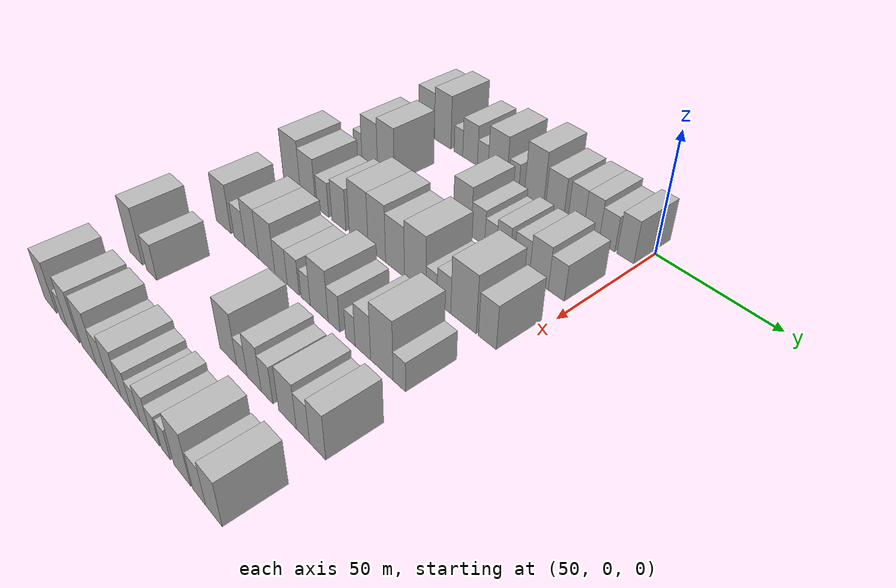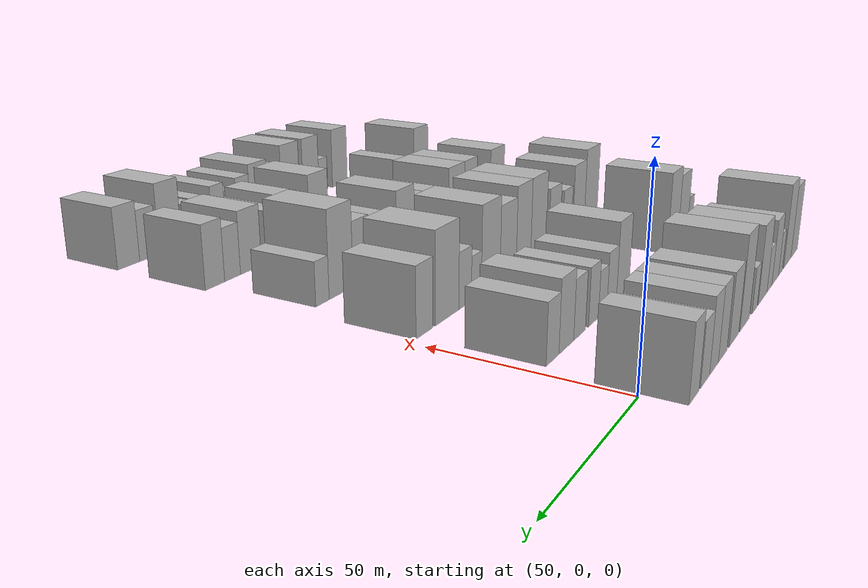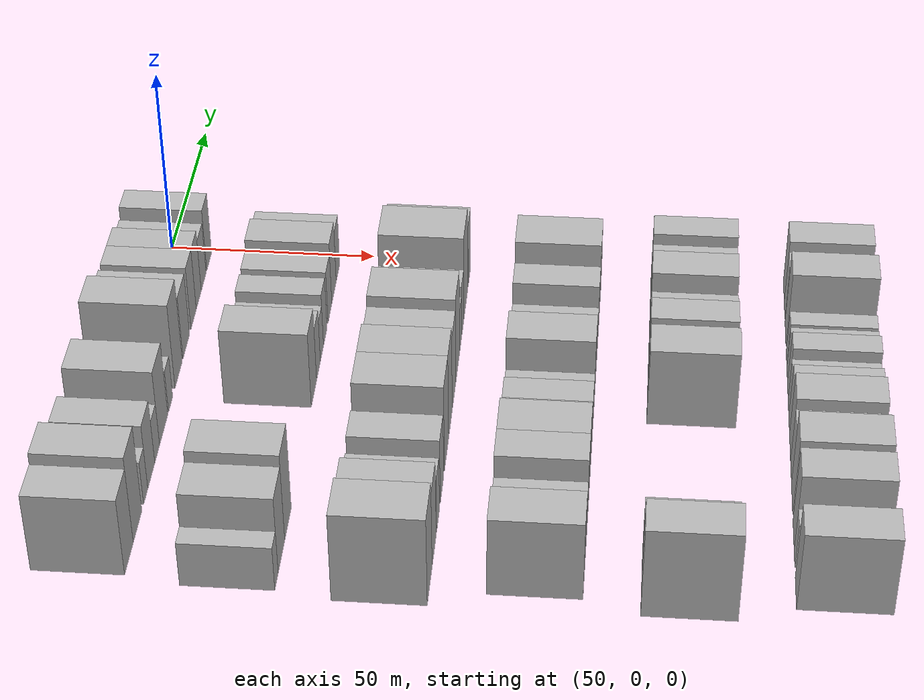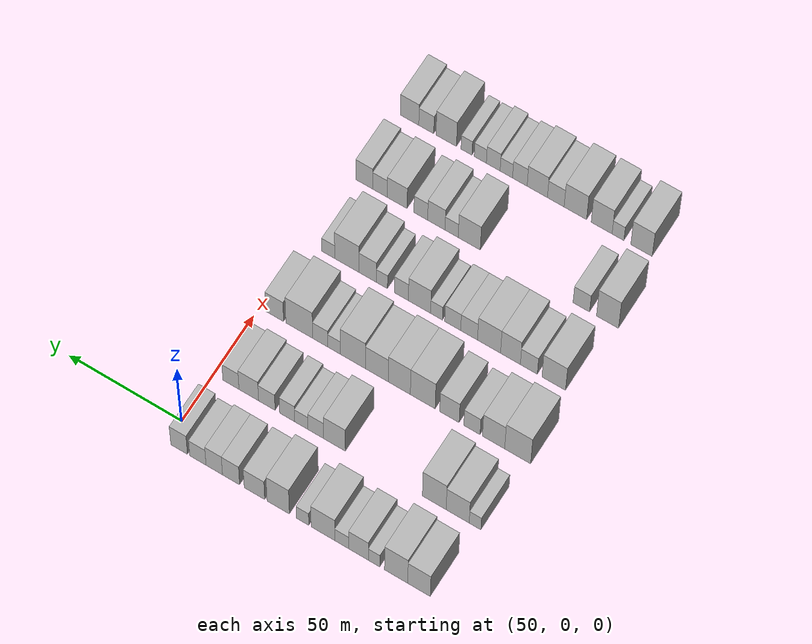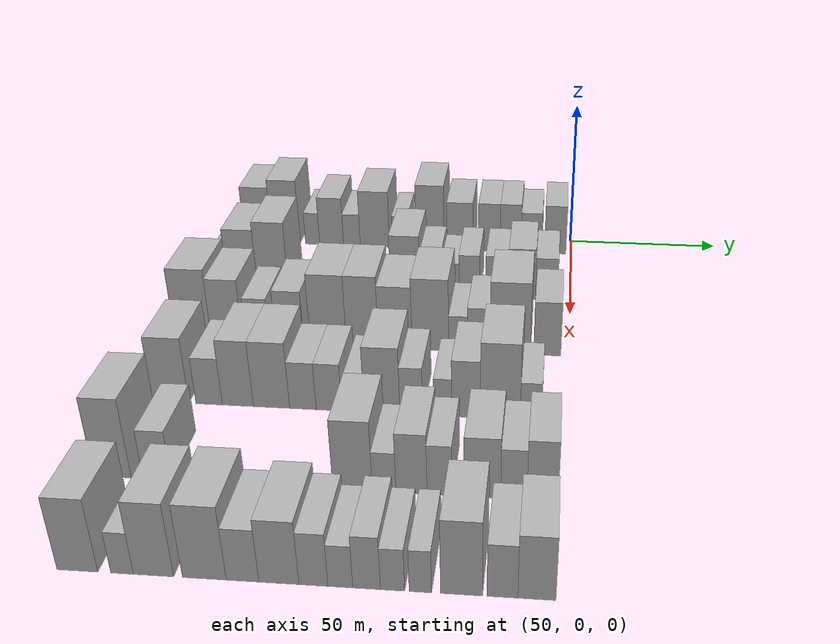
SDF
<sdf version="1.6">
 <world name="default">
  <model name="building_47">
   <static>1</static>
   <pose>50.0000 -109.7282 0 0.000000 0.000000 0.000000</pose>
   <link name="link">
    <pose>0 0 10.50 0 0 0</pose>
    <collision name="collision"><geometry><box><size>20.0000 9.7334 21.0000</size></box></geometry></collision>
    <visual name="visual">
     <cast_shadows>0</cast_shadows>
     <geometry><box><size>20.0000 9.7334 21.0000</size></box></geometry>
     <material>
      <script>
       <uri>model://HANNAS_wall/materials/scripts</uri>
       <uri>model://HANNAS_wall/materials/textures</uri>
       <name>vrc/HANNAS_wall</name>
      </script>
     </material>
    </visual>
   </link>
  </model>
  <model name="building_48">
   <static>1</static>
   <pose>50.0000 -99.8659 0 0.000000 0.000000 0.000000</pose>
   <link name="link">
    <pose>0 0 12.00 0 0 0</pose>
    <collision name="collision"><geometry><box><size>20.0000 9.9911 24.0000</size></box></geometry></collision>
    <visual name="visual">
     <cast_shadows>0</cast_shadows>
     <geometry><box><size>20.0000 9.9911 24.0000</size></box></geometry>
     <material>
      <script>
       <uri>model://HANNAS_wall/materials/scripts</uri>
       <uri>model://HANNAS_wall/materials/textures</uri>
       <name>vrc/HANNAS_wall</name>
      </script>
     </material>
    </visual>
   </link>
  </model>
  <model name="building_49">
   <static>1</static>
   <pose>50.0000 -90.3683 0 0.000000 0.000000 0.000000</pose>
   <link name="link">
    <pose>0 0 6.00 0 0 0</pose>
    <collision name="collision"><geometry><box><size>20.0000 5.0040 12.0000</size></box></geometry></collision>
    <visual name="visual">
     <cast_shadows>0</cast_shadows>
     <geometry><box><size>20.0000 5.0040 12.0000</size></box></geometry>
     <material>
      <script>
       <uri>model://HANNAS_wall/materials/scripts</uri>
       <uri>model://HANNAS_wall/materials/textures</uri>
       <name>vrc/HANNAS_wall</name>
      </script>
     </material>
    </visual>
   </link>
  </model>
  <model name="building_50">
   <static>1</static>
   <pose>50.0000 -83.6136 0 0.000000 0.000000 0.000000</pose>
   <link name="link">
    <pose>0 0 9.00 0 0 0</pose>
    <collision name="collision"><geometry><box><size>20.0000 8.5054 18.0000</size></box></geometry></collision>
    <visual name="visual">
     <cast_shadows>0</cast_shadows>
     <geometry><box><size>20.0000 8.5054 18.0000</size></box></geometry>
     <material>
      <script>
       <uri>model://HANNAS_wall/materials/scripts</uri>
       <uri>model://HANNAS_wall/materials/textures</uri>
       <name>vrc/HANNAS_wall</name>
      </script>
     </material>
    </visual>
   </link>
  </model>
  <model name="building_51">
   <static>1</static>
   <pose>50.0000 -76.3933 0 0.000000 0.000000 0.000000</pose>
   <link name="link">
    <pose>0 0 6.00 0 0 0</pose>
    <collision name="collision"><geometry><box><size>20.0000 5.9352 12.0000</size></box></geometry></collision>
    <visual name="visual">
     <cast_shadows>0</cast_shadows>
     <geometry><box><size>20.0000 5.9352 12.0000</size></box></geometry>
     <material>
      <script>
       <uri>model://HANNAS_wall/materials/scripts</uri>
       <uri>model://HANNAS_wall/materials/textures</uri>
       <name>vrc/HANNAS_wall</name>
      </script>
     </material>
    </visual>
   </link>
  </model>
  <model name="building_52">
   <static>1</static>
   <pose>50.0000 -68.2543 0 0.000000 0.000000 0.000000</pose>
   <link name="link">
    <pose>0 0 10.50 0 0 0</pose>
    <collision name="collision"><geometry><box><size>20.0000 10.3429 21.0000</size></box></geometry></collision>
    <visual name="visual">
     <cast_shadows>0</cast_shadows>
     <geometry><box><size>20.0000 10.3429 21.0000</size></box></geometry>
     <material>
      <script>
       <uri>model://HANNAS_wall/materials/scripts</uri>
       <uri>model://HANNAS_wall/materials/textures</uri>
       <name>vrc/HANNAS_wall</name>
      </script>
     </material>
    </visual>
   </link>
  </model>
  <model name="building_53">
   <static>1</static>
   <pose>50.0000 -59.3650 0 0.000000 0.000000 0.000000</pose>
   <link name="link">
    <pose>0 0 6.00 0 0 0</pose>
    <collision name="collision"><geometry><box><size>20.0000 5.4358 12.0000</size></box></geometry></collision>
    <visual name="visual">
     <cast_shadows>0</cast_shadows>
     <geometry><box><size>20.0000 5.4358 12.0000</size></box></geometry>
     <material>
      <script>
       <uri>model://HANNAS_wall/materials/scripts</uri>
       <uri>model://HANNAS_wall/materials/textures</uri>
       <name>vrc/HANNAS_wall</name>
      </script>
     </material>
    </visual>
   </link>
  </model>
  <model name="building_54">
   <static>1</static>
   <pose>50.0000 -48.7629 0 0.000000 0.000000 0.000000</pose>
   <link name="link">
    <pose>0 0 12.00 0 0 0</pose>
    <collision name="collision"><geometry><box><size>20.0000 9.7684 24.0000</size></box></geometry></collision>
    <visual name="visual">
     <cast_shadows>0</cast_shadows>
     <geometry><box><size>20.0000 9.7684 24.0000</size></box></geometry>
     <material>
      <script>
       <uri>model://HANNAS_wall/materials/scripts</uri>
       <uri>model://HANNAS_wall/materials/textures</uri>
       <name>vrc/HANNAS_wall</name>
      </script>
     </material>
    </visual>
   </link>
  </model>
  <model name="building_55">
   <static>1</static>
   <pose>50.0000 -38.3831 0 0.000000 0.000000 0.000000</pose>
   <link name="link">
    <pose>0 0 9.00 0 0 0</pose>
    <collision name="collision"><geometry><box><size>20.0000 8.9911 18.0000</size></box></geometry></collision>
    <visual name="visual">
     <cast_shadows>0</cast_shadows>
     <geometry><box><size>20.0000 8.9911 18.0000</size></box></geometry>
     <material>
      <script>
       <uri>model://HANNAS_wall/materials/scripts</uri>
       <uri>model://HANNAS_wall/materials/textures</uri>
       <name>vrc/HANNAS_wall</name>
      </script>
     </material>
    </visual>
   </link>
  </model>
  <model name="building_56">
   <static>1</static>
   <pose>50.0000 -28.1295 0 0.000000 0.000000 0.000000</pose>
   <link name="link">
    <pose>0 0 9.00 0 0 0</pose>
    <collision name="collision"><geometry><box><size>20.0000 7.5162 18.0000</size></box></geometry></collision>
    <visual name="visual">
     <cast_shadows>0</cast_shadows>
     <geometry><box><size>20.0000 7.5162 18.0000</size></box></geometry>
     <material>
      <script>
       <uri>model://HANNAS_wall/materials/scripts</uri>
       <uri>model://HANNAS_wall/materials/textures</uri>
       <name>vrc/HANNAS_wall</name>
      </script>
     </material>
    </visual>
   </link>
  </model>
  <model name="building_57">
   <static>1</static>
   <pose>50.0000 -20.7527 0 0.000000 0.000000 0.000000</pose>
   <link name="link">
    <pose>0 0 9.00 0 0 0</pose>
    <collision name="collision"><geometry><box><size>20.0000 7.2374 18.0000</size></box></geometry></collision>
    <visual name="visual">
     <cast_shadows>0</cast_shadows>
     <geometry><box><size>20.0000 7.2374 18.0000</size></box></geometry>
     <material>
      <script>
       <uri>model://HANNAS_wall/materials/scripts</uri>
       <uri>model://HANNAS_wall/materials/textures</uri>
       <name>vrc/HANNAS_wall</name>
      </script>
     </material>
    </visual>
   </link>
  </model>
  <model name="building_58">
   <static>1</static>
   <pose>50.0000 -13.5621 0 0.000000 0.000000 0.000000</pose>
   <link name="link">
    <pose>0 0 7.50 0 0 0</pose>
    <collision name="collision"><geometry><box><size>20.0000 7.1438 15.0000</size></box></geometry></collision>
    <visual name="visual">
     <cast_shadows>0</cast_shadows>
     <geometry><box><size>20.0000 7.1438 15.0000</size></box></geometry>
     <material>
      <script>
       <uri>model://HANNAS_wall/materials/scripts</uri>
       <uri>model://HANNAS_wall/materials/textures</uri>
       <name>vrc/HANNAS_wall</name>
      </script>
     </material>
    </visual>
   </link>
  </model>
  <model name="building_59">
   <static>1</static>
   <pose>50.0000 -5.3172 0 0.000000 0.000000 0.000000</pose>
   <link name="link">
    <pose>0 0 9.00 0 0 0</pose>
    <collision name="collision"><geometry><box><size>20.0000 7.3459 18.0000</size></box></geometry></collision>
    <visual name="visual">
     <cast_shadows>0</cast_shadows>
     <geometry><box><size>20.0000 7.3459 18.0000</size></box></geometry>
     <material>
      <script>
       <uri>model://HANNAS_wall/materials/scripts</uri>
       <uri>model://HANNAS_wall/materials/textures</uri>
       <name>vrc/HANNAS_wall</name>
      </script>
     </material>
    </visual>
   </link>
  </model>
  <model name="building_167">
   <static>1</static>
   <pose>82.0000 -114.2259 0 0.000000 0.000000 0.000000</pose>
   <link name="link">
    <pose>0 0 6.00 0 0 0</pose>
    <collision name="collision"><geometry><box><size>20.0000 5.0733 12.0000</size></box></geometry></collision>
    <visual name="visual">
     <cast_shadows>0</cast_shadows>
     <geometry><box><size>20.0000 5.0733 12.0000</size></box></geometry>
     <material>
      <script>
       <uri>model://HANNAS_wall/materials/scripts</uri>
       <uri>model://HANNAS_wall/materials/textures</uri>
       <name>vrc/HANNAS_wall</name>
      </script>
     </material>
    </visual>
   </link>
  </model>
  <model name="building_168">
   <static>1</static>
   <pose>82.0000 -106.7015 0 0.000000 0.000000 0.000000</pose>
   <link name="link">
    <pose>0 0 10.50 0 0 0</pose>
    <collision name="collision"><geometry><box><size>20.0000 9.9755 21.0000</size></box></geometry></collision>
    <visual name="visual">
     <cast_shadows>0</cast_shadows>
     <geometry><box><size>20.0000 9.9755 21.0000</size></box></geometry>
     <material>
      <script>
       <uri>model://HANNAS_wall/materials/scripts</uri>
       <uri>model://HANNAS_wall/materials/textures</uri>
       <name>vrc/HANNAS_wall</name>
      </script>
     </material>
    </visual>
   </link>
  </model>
  <model name="building_169">
   <static>1</static>
   <pose>82.0000 -96.5786 0 0.000000 0.000000 0.000000</pose>
   <link name="link">
    <pose>0 0 12.00 0 0 0</pose>
    <collision name="collision"><geometry><box><size>20.0000 10.2704 24.0000</size></box></geometry></collision>
    <visual name="visual">
     <cast_shadows>0</cast_shadows>
     <geometry><box><size>20.0000 10.2704 24.0000</size></box></geometry>
     <material>
      <script>
       <uri>model://HANNAS_wall/materials/scripts</uri>
       <uri>model://HANNAS_wall/materials/textures</uri>
       <name>vrc/HANNAS_wall</name>
      </script>
     </material>
    </visual>
   </link>
  </model>
  <model name="building_170">
   <static>1</static>
   <pose>82.0000 -53.1805 0 0.000000 0.000000 0.000000</pose>
   <link name="link">
    <pose>0 0 10.50 0 0 0</pose>
    <collision name="collision"><geometry><box><size>20.0000 9.5086 21.0000</size></box></geometry></collision>
    <visual name="visual">
     <cast_shadows>0</cast_shadows>
     <geometry><box><size>20.0000 9.5086 21.0000</size></box></geometry>
     <material>
      <script>
       <uri>model://HANNAS_wall/materials/scripts</uri>
       <uri>model://HANNAS_wall/materials/textures</uri>
       <name>vrc/HANNAS_wall</name>
      </script>
     </material>
    </visual>
   </link>
  </model>
  <model name="building_171">
   <static>1</static>
   <pose>82.0000 -44.9798 0 0.000000 0.000000 0.000000</pose>
   <link name="link">
    <pose>0 0 7.50 0 0 0</pose>
    <collision name="collision"><geometry><box><size>20.0000 6.8928 15.0000</size></box></geometry></collision>
    <visual name="visual">
     <cast_shadows>0</cast_shadows>
     <geometry><box><size>20.0000 6.8928 15.0000</size></box></geometry>
     <material>
      <script>
       <uri>model://HANNAS_wall/materials/scripts</uri>
       <uri>model://HANNAS_wall/materials/textures</uri>
       <name>vrc/HANNAS_wall</name>
      </script>
     </material>
    </visual>
   </link>
  </model>
  <model name="building_172">
   <static>1</static>
   <pose>82.0000 -38.6403 0 0.000000 0.000000 0.000000</pose>
   <link name="link">
    <pose>0 0 6.00 0 0 0</pose>
    <collision name="collision"><geometry><box><size>20.0000 5.7862 12.0000</size></box></geometry></collision>
    <visual name="visual">
     <cast_shadows>0</cast_shadows>
     <geometry><box><size>20.0000 5.7862 12.0000</size></box></geometry>
     <material>
      <script>
       <uri>model://HANNAS_wall/materials/scripts</uri>
       <uri>model://HANNAS_wall/materials/textures</uri>
       <name>vrc/HANNAS_wall</name>
      </script>
     </material>
    </visual>
   </link>
  </model>
  <model name="building_173">
   <static>1</static>
   <pose>82.0000 -32.4413 0 0.000000 0.000000 0.000000</pose>
   <link name="link">
    <pose>0 0 7.50 0 0 0</pose>
    <collision name="collision"><geometry><box><size>20.0000 6.6118 15.0000</size></box></geometry></collision>
    <visual name="visual">
     <cast_shadows>0</cast_shadows>
     <geometry><box><size>20.0000 6.6118 15.0000</size></box></geometry>
     <material>
      <script>
       <uri>model://HANNAS_wall/materials/scripts</uri>
       <uri>model://HANNAS_wall/materials/textures</uri>
       <name>vrc/HANNAS_wall</name>
      </script>
     </material>
    </visual>
   </link>
  </model>
  <model name="building_174">
   <static>1</static>
   <pose>82.0000 -23.4906 0 0.000000 0.000000 0.000000</pose>
   <link name="link">
    <pose>0 0 7.50 0 0 0</pose>
    <collision name="collision"><geometry><box><size>20.0000 7.2895 15.0000</size></box></geometry></collision>
    <visual name="visual">
     <cast_shadows>0</cast_shadows>
     <geometry><box><size>20.0000 7.2895 15.0000</size></box></geometry>
     <material>
      <script>
       <uri>model://HANNAS_wall/materials/scripts</uri>
       <uri>model://HANNAS_wall/materials/textures</uri>
       <name>vrc/HANNAS_wall</name>
      </script>
     </material>
    </visual>
   </link>
  </model>
  <model name="building_175">
   <static>1</static>
   <pose>82.0000 -15.5117 0 0.000000 0.000000 0.000000</pose>
   <link name="link">
    <pose>0 0 9.00 0 0 0</pose>
    <collision name="collision"><geometry><box><size>20.0000 8.6683 18.0000</size></box></geometry></collision>
    <visual name="visual">
     <cast_shadows>0</cast_shadows>
     <geometry><box><size>20.0000 8.6683 18.0000</size></box></geometry>
     <material>
      <script>
       <uri>model://HANNAS_wall/materials/scripts</uri>
       <uri>model://HANNAS_wall/materials/textures</uri>
       <name>vrc/HANNAS_wall</name>
      </script>
     </material>
    </visual>
   </link>
  </model>
  <model name="building_176">
   <static>1</static>
   <pose>82.0000 -7.6201 0 0.000000 0.000000 0.000000</pose>
   <link name="link">
    <pose>0 0 7.50 0 0 0</pose>
    <collision name="collision"><geometry><box><size>20.0000 7.1150 15.0000</size></box></geometry></collision>
    <visual name="visual">
     <cast_shadows>0</cast_shadows>
     <geometry><box><size>20.0000 7.1150 15.0000</size></box></geometry>
     <material>
      <script>
       <uri>model://HANNAS_wall/materials/scripts</uri>
       <uri>model://HANNAS_wall/materials/textures</uri>
       <name>vrc/HANNAS_wall</name>
      </script>
     </material>
    </visual>
   </link>
  </model>
  <model name="building_282">
   <static>1</static>
   <pose>114.0000 -113.1666 0 0.000000 0.000000 0.000000</pose>
   <link name="link">
    <pose>0 0 12.00 0 0 0</pose>
    <collision name="collision"><geometry><box><size>20.0000 11.2739 24.0000</size></box></geometry></collision>
    <visual name="visual">
     <cast_shadows>0</cast_shadows>
     <geometry><box><size>20.0000 11.2739 24.0000</size></box></geometry>
     <material>
      <script>
       <uri>model://HANNAS_wall/materials/scripts</uri>
       <uri>model://HANNAS_wall/materials/textures</uri>
       <name>vrc/HANNAS_wall</name>
      </script>
     </material>
    </visual>
   </link>
  </model>
  <model name="building_283">
   <static>1</static>
   <pose>114.0000 -102.7014 0 0.000000 0.000000 0.000000</pose>
   <link name="link">
    <pose>0 0 10.50 0 0 0</pose>
    <collision name="collision"><geometry><box><size>20.0000 9.6564 21.0000</size></box></geometry></collision>
    <visual name="visual">
     <cast_shadows>0</cast_shadows>
     <geometry><box><size>20.0000 9.6564 21.0000</size></box></geometry>
     <material>
      <script>
       <uri>model://HANNAS_wall/materials/scripts</uri>
       <uri>model://HANNAS_wall/materials/textures</uri>
       <name>vrc/HANNAS_wall</name>
      </script>
     </material>
    </visual>
   </link>
  </model>
  <model name="building_284">
   <static>1</static>
   <pose>114.0000 -93.3233 0 0.000000 0.000000 0.000000</pose>
   <link name="link">
    <pose>0 0 7.50 0 0 0</pose>
    <collision name="collision"><geometry><box><size>20.0000 7.0997 15.0000</size></box></geometry></collision>
    <visual name="visual">
     <cast_shadows>0</cast_shadows>
     <geometry><box><size>20.0000 7.0997 15.0000</size></box></geometry>
     <material>
      <script>
       <uri>model://HANNAS_wall/materials/scripts</uri>
       <uri>model://HANNAS_wall/materials/textures</uri>
       <name>vrc/HANNAS_wall</name>
      </script>
     </material>
    </visual>
   </link>
  </model>
  <model name="building_285">
   <static>1</static>
   <pose>114.0000 -83.5263 0 0.000000 0.000000 0.000000</pose>
   <link name="link">
    <pose>0 0 9.00 0 0 0</pose>
    <collision name="collision"><geometry><box><size>20.0000 8.4943 18.0000</size></box></geometry></collision>
    <visual name="visual">
     <cast_shadows>0</cast_shadows>
     <geometry><box><size>20.0000 8.4943 18.0000</size></box></geometry>
     <material>
      <script>
       <uri>model://HANNAS_wall/materials/scripts</uri>
       <uri>model://HANNAS_wall/materials/textures</uri>
       <name>vrc/HANNAS_wall</name>
      </script>
     </material>
    </visual>
   </link>
  </model>
  <model name="building_286">
   <static>1</static>
   <pose>114.0000 -71.8578 0 0.000000 0.000000 0.000000</pose>
   <link name="link">
    <pose>0 0 12.00 0 0 0</pose>
    <collision name="collision"><geometry><box><size>20.0000 10.8425 24.0000</size></box></geometry></collision>
    <visual name="visual">
     <cast_shadows>0</cast_shadows>
     <geometry><box><size>20.0000 10.8425 24.0000</size></box></geometry>
     <material>
      <script>
       <uri>model://HANNAS_wall/materials/scripts</uri>
       <uri>model://HANNAS_wall/materials/textures</uri>
       <name>vrc/HANNAS_wall</name>
      </script>
     </material>
    </visual>
   </link>
  </model>
  <model name="building_287">
   <static>1</static>
   <pose>114.0000 -61.6049 0 0.000000 0.000000 0.000000</pose>
   <link name="link">
    <pose>0 0 12.00 0 0 0</pose>
    <collision name="collision"><geometry><box><size>20.0000 9.6635 24.0000</size></box></geometry></collision>
    <visual name="visual">
     <cast_shadows>0</cast_shadows>
     <geometry><box><size>20.0000 9.6635 24.0000</size></box></geometry>
     <material>
      <script>
       <uri>model://HANNAS_wall/materials/scripts</uri>
       <uri>model://HANNAS_wall/materials/textures</uri>
       <name>vrc/HANNAS_wall</name>
      </script>
     </material>
    </visual>
   </link>
  </model>
  <model name="building_288">
   <static>1</static>
   <pose>114.0000 -51.7278 0 0.000000 0.000000 0.000000</pose>
   <link name="link">
    <pose>0 0 10.50 0 0 0</pose>
    <collision name="collision"><geometry><box><size>20.0000 10.0906 21.0000</size></box></geometry></collision>
    <visual name="visual">
     <cast_shadows>0</cast_shadows>
     <geometry><box><size>20.0000 10.0906 21.0000</size></box></geometry>
     <material>
      <script>
       <uri>model://HANNAS_wall/materials/scripts</uri>
       <uri>model://HANNAS_wall/materials/textures</uri>
       <name>vrc/HANNAS_wall</name>
      </script>
     </material>
    </visual>
   </link>
  </model>
  <model name="building_289">
   <static>1</static>
   <pose>114.0000 -41.2081 0 0.000000 0.000000 0.000000</pose>
   <link name="link">
    <pose>0 0 12.00 0 0 0</pose>
    <collision name="collision"><geometry><box><size>20.0000 10.9488 24.0000</size></box></geometry></collision>
    <visual name="visual">
     <cast_shadows>0</cast_shadows>
     <geometry><box><size>20.0000 10.9488 24.0000</size></box></geometry>
     <material>
      <script>
       <uri>model://HANNAS_wall/materials/scripts</uri>
       <uri>model://HANNAS_wall/materials/textures</uri>
       <name>vrc/HANNAS_wall</name>
      </script>
     </material>
    </visual>
   </link>
  </model>
  <model name="building_290">
   <static>1</static>
   <pose>114.0000 -32.9665 0 0.000000 0.000000 0.000000</pose>
   <link name="link">
    <pose>0 0 6.00 0 0 0</pose>
    <collision name="collision"><geometry><box><size>20.0000 5.5345 12.0000</size></box></geometry></collision>
    <visual name="visual">
     <cast_shadows>0</cast_shadows>
     <geometry><box><size>20.0000 5.5345 12.0000</size></box></geometry>
     <material>
      <script>
       <uri>model://HANNAS_wall/materials/scripts</uri>
       <uri>model://HANNAS_wall/materials/textures</uri>
       <name>vrc/HANNAS_wall</name>
      </script>
     </material>
    </visual>
   </link>
  </model>
  <model name="building_291">
   <static>1</static>
   <pose>114.0000 -26.8598 0 0.000000 0.000000 0.000000</pose>
   <link name="link">
    <pose>0 0 7.50 0 0 0</pose>
    <collision name="collision"><geometry><box><size>20.0000 6.6787 15.0000</size></box></geometry></collision>
    <visual name="visual">
     <cast_shadows>0</cast_shadows>
     <geometry><box><size>20.0000 6.6787 15.0000</size></box></geometry>
     <material>
      <script>
       <uri>model://HANNAS_wall/materials/scripts</uri>
       <uri>model://HANNAS_wall/materials/textures</uri>
       <name>vrc/HANNAS_wall</name>
      </script>
     </material>
    </visual>
   </link>
  </model>
  <model name="building_292">
   <static>1</static>
   <pose>114.0000 -17.5716 0 0.000000 0.000000 0.000000</pose>
   <link name="link">
    <pose>0 0 12.00 0 0 0</pose>
    <collision name="collision"><geometry><box><size>20.0000 11.8977 24.0000</size></box></geometry></collision>
    <visual name="visual">
     <cast_shadows>0</cast_shadows>
     <geometry><box><size>20.0000 11.8977 24.0000</size></box></geometry>
     <material>
      <script>
       <uri>model://HANNAS_wall/materials/scripts</uri>
       <uri>model://HANNAS_wall/materials/textures</uri>
       <name>vrc/HANNAS_wall</name>
      </script>
     </material>
    </visual>
   </link>
  </model>
  <model name="building_293">
   <static>1</static>
   <pose>114.0000 -6.6537 0 0.000000 0.000000 0.000000</pose>
   <link name="link">
    <pose>0 0 9.00 0 0 0</pose>
    <collision name="collision"><geometry><box><size>20.0000 7.9381 18.0000</size></box></geometry></collision>
    <visual name="visual">
     <cast_shadows>0</cast_shadows>
     <geometry><box><size>20.0000 7.9381 18.0000</size></box></geometry>
     <material>
      <script>
       <uri>model://HANNAS_wall/materials/scripts</uri>
       <uri>model://HANNAS_wall/materials/textures</uri>
       <name>vrc/HANNAS_wall</name>
      </script>
     </material>
    </visual>
   </link>
  </model>
  <model name="building_403">
   <static>1</static>
   <pose>146.0000 -109.4731 0 0.000000 0.000000 0.000000</pose>
   <link name="link">
    <pose>0 0 10.50 0 0 0</pose>
    <collision name="collision"><geometry><box><size>20.0000 10.2498 21.0000</size></box></geometry></collision>
    <visual name="visual">
     <cast_shadows>0</cast_shadows>
     <geometry><box><size>20.0000 10.2498 21.0000</size></box></geometry>
     <material>
      <script>
       <uri>model://HANNAS_wall/materials/scripts</uri>
       <uri>model://HANNAS_wall/materials/textures</uri>
       <name>vrc/HANNAS_wall</name>
      </script>
     </material>
    </visual>
   </link>
  </model>
  <model name="building_404">
   <static>1</static>
   <pose>146.0000 -98.6468 0 0.000000 0.000000 0.000000</pose>
   <link name="link">
    <pose>0 0 7.50 0 0 0</pose>
    <collision name="collision"><geometry><box><size>20.0000 7.4027 15.0000</size></box></geometry></collision>
    <visual name="visual">
     <cast_shadows>0</cast_shadows>
     <geometry><box><size>20.0000 7.4027 15.0000</size></box></geometry>
     <material>
      <script>
       <uri>model://HANNAS_wall/materials/scripts</uri>
       <uri>model://HANNAS_wall/materials/textures</uri>
       <name>vrc/HANNAS_wall</name>
      </script>
     </material>
    </visual>
   </link>
  </model>
  <model name="building_405">
   <static>1</static>
   <pose>146.0000 -90.6107 0 0.000000 0.000000 0.000000</pose>
   <link name="link">
    <pose>0 0 10.50 0 0 0</pose>
    <collision name="collision"><geometry><box><size>20.0000 8.6695 21.0000</size></box></geometry></collision>
    <visual name="visual">
     <cast_shadows>0</cast_shadows>
     <geometry><box><size>20.0000 8.6695 21.0000</size></box></geometry>
     <material>
      <script>
       <uri>model://HANNAS_wall/materials/scripts</uri>
       <uri>model://HANNAS_wall/materials/textures</uri>
       <name>vrc/HANNAS_wall</name>
      </script>
     </material>
    </visual>
   </link>
  </model>
  <model name="building_406">
   <static>1</static>
   <pose>146.0000 -81.2273 0 0.000000 0.000000 0.000000</pose>
   <link name="link">
    <pose>0 0 10.50 0 0 0</pose>
    <collision name="collision"><geometry><box><size>20.0000 10.0974 21.0000</size></box></geometry></collision>
    <visual name="visual">
     <cast_shadows>0</cast_shadows>
     <geometry><box><size>20.0000 10.0974 21.0000</size></box></geometry>
     <material>
      <script>
       <uri>model://HANNAS_wall/materials/scripts</uri>
       <uri>model://HANNAS_wall/materials/textures</uri>
       <name>vrc/HANNAS_wall</name>
      </script>
     </material>
    </visual>
   </link>
  </model>
  <model name="building_407">
   <static>1</static>
   <pose>146.0000 -72.4935 0 0.000000 0.000000 0.000000</pose>
   <link name="link">
    <pose>0 0 7.50 0 0 0</pose>
    <collision name="collision"><geometry><box><size>20.0000 7.3701 15.0000</size></box></geometry></collision>
    <visual name="visual">
     <cast_shadows>0</cast_shadows>
     <geometry><box><size>20.0000 7.3701 15.0000</size></box></geometry>
     <material>
      <script>
       <uri>model://HANNAS_wall/materials/scripts</uri>
       <uri>model://HANNAS_wall/materials/textures</uri>
       <name>vrc/HANNAS_wall</name>
      </script>
     </material>
    </visual>
   </link>
  </model>
  <model name="building_408">
   <static>1</static>
   <pose>146.0000 -65.3092 0 0.000000 0.000000 0.000000</pose>
   <link name="link">
    <pose>0 0 7.50 0 0 0</pose>
    <collision name="collision"><geometry><box><size>20.0000 6.9985 15.0000</size></box></geometry></collision>
    <visual name="visual">
     <cast_shadows>0</cast_shadows>
     <geometry><box><size>20.0000 6.9985 15.0000</size></box></geometry>
     <material>
      <script>
       <uri>model://HANNAS_wall/materials/scripts</uri>
       <uri>model://HANNAS_wall/materials/textures</uri>
       <name>vrc/HANNAS_wall</name>
      </script>
     </material>
    </visual>
   </link>
  </model>
  <model name="building_409">
   <static>1</static>
   <pose>146.0000 -58.1981 0 0.000000 0.000000 0.000000</pose>
   <link name="link">
    <pose>0 0 6.00 0 0 0</pose>
    <collision name="collision"><geometry><box><size>20.0000 5.2238 12.0000</size></box></geometry></collision>
    <visual name="visual">
     <cast_shadows>0</cast_shadows>
     <geometry><box><size>20.0000 5.2238 12.0000</size></box></geometry>
     <material>
      <script>
       <uri>model://HANNAS_wall/materials/scripts</uri>
       <uri>model://HANNAS_wall/materials/textures</uri>
       <name>vrc/HANNAS_wall</name>
      </script>
     </material>
    </visual>
   </link>
  </model>
  <model name="building_410">
   <static>1</static>
   <pose>146.0000 -50.6871 0 0.000000 0.000000 0.000000</pose>
   <link name="link">
    <pose>0 0 10.50 0 0 0</pose>
    <collision name="collision"><geometry><box><size>20.0000 9.7982 21.0000</size></box></geometry></collision>
    <visual name="visual">
     <cast_shadows>0</cast_shadows>
     <geometry><box><size>20.0000 9.7982 21.0000</size></box></geometry>
     <material>
      <script>
       <uri>model://HANNAS_wall/materials/scripts</uri>
       <uri>model://HANNAS_wall/materials/textures</uri>
       <name>vrc/HANNAS_wall</name>
      </script>
     </material>
    </visual>
   </link>
  </model>
  <model name="building_411">
   <static>1</static>
   <pose>146.0000 -42.6820 0 0.000000 0.000000 0.000000</pose>
   <link name="link">
    <pose>0 0 7.50 0 0 0</pose>
    <collision name="collision"><geometry><box><size>20.0000 6.2121 15.0000</size></box></geometry></collision>
    <visual name="visual">
     <cast_shadows>0</cast_shadows>
     <geometry><box><size>20.0000 6.2121 15.0000</size></box></geometry>
     <material>
      <script>
       <uri>model://HANNAS_wall/materials/scripts</uri>
       <uri>model://HANNAS_wall/materials/textures</uri>
       <name>vrc/HANNAS_wall</name>
      </script>
     </material>
    </visual>
   </link>
  </model>
  <model name="building_412">
   <static>1</static>
   <pose>146.0000 -34.1272 0 0.000000 0.000000 0.000000</pose>
   <link name="link">
    <pose>0 0 6.00 0 0 0</pose>
    <collision name="collision"><geometry><box><size>20.0000 4.8975 12.0000</size></box></geometry></collision>
    <visual name="visual">
     <cast_shadows>0</cast_shadows>
     <geometry><box><size>20.0000 4.8975 12.0000</size></box></geometry>
     <material>
      <script>
       <uri>model://HANNAS_wall/materials/scripts</uri>
       <uri>model://HANNAS_wall/materials/textures</uri>
       <name>vrc/HANNAS_wall</name>
      </script>
     </material>
    </visual>
   </link>
  </model>
  <model name="building_413">
   <static>1</static>
   <pose>146.0000 -27.8046 0 0.000000 0.000000 0.000000</pose>
   <link name="link">
    <pose>0 0 9.00 0 0 0</pose>
    <collision name="collision"><geometry><box><size>20.0000 7.7476 18.0000</size></box></geometry></collision>
    <visual name="visual">
     <cast_shadows>0</cast_shadows>
     <geometry><box><size>20.0000 7.7476 18.0000</size></box></geometry>
     <material>
      <script>
       <uri>model://HANNAS_wall/materials/scripts</uri>
       <uri>model://HANNAS_wall/materials/textures</uri>
       <name>vrc/HANNAS_wall</name>
      </script>
     </material>
    </visual>
   </link>
  </model>
  <model name="building_414">
   <static>1</static>
   <pose>146.0000 -18.5483 0 0.000000 0.000000 0.000000</pose>
   <link name="link">
    <pose>0 0 12.00 0 0 0</pose>
    <collision name="collision"><geometry><box><size>20.0000 10.7651 24.0000</size></box></geometry></collision>
    <visual name="visual">
     <cast_shadows>0</cast_shadows>
     <geometry><box><size>20.0000 10.7651 24.0000</size></box></geometry>
     <material>
      <script>
       <uri>model://HANNAS_wall/materials/scripts</uri>
       <uri>model://HANNAS_wall/materials/textures</uri>
       <name>vrc/HANNAS_wall</name>
      </script>
     </material>
    </visual>
   </link>
  </model>
  <model name="building_415">
   <static>1</static>
   <pose>146.0000 -10.2993 0 0.000000 0.000000 0.000000</pose>
   <link name="link">
    <pose>0 0 6.00 0 0 0</pose>
    <collision name="collision"><geometry><box><size>20.0000 5.7329 12.0000</size></box></geometry></collision>
    <visual name="visual">
     <cast_shadows>0</cast_shadows>
     <geometry><box><size>20.0000 5.7329 12.0000</size></box></geometry>
     <material>
      <script>
       <uri>model://HANNAS_wall/materials/scripts</uri>
       <uri>model://HANNAS_wall/materials/textures</uri>
       <name>vrc/HANNAS_wall</name>
      </script>
     </material>
    </visual>
   </link>
  </model>
  <model name="building_524">
   <static>1</static>
   <pose>178.0000 -113.7181 0 0.000000 0.000000 0.000000</pose>
   <link name="link">
    <pose>0 0 12.00 0 0 0</pose>
    <collision name="collision"><geometry><box><size>20.0000 9.6156 24.0000</size></box></geometry></collision>
    <visual name="visual">
     <cast_shadows>0</cast_shadows>
     <geometry><box><size>20.0000 9.6156 24.0000</size></box></geometry>
     <material>
      <script>
       <uri>model://HANNAS_wall/materials/scripts</uri>
       <uri>model://HANNAS_wall/materials/textures</uri>
       <name>vrc/HANNAS_wall</name>
      </script>
     </material>
    </visual>
   </link>
  </model>
  <model name="building_525">
   <static>1</static>
   <pose>178.0000 -102.2853 0 0.000000 0.000000 0.000000</pose>
   <link name="link">
    <pose>0 0 7.50 0 0 0</pose>
    <collision name="collision"><geometry><box><size>20.0000 7.2500 15.0000</size></box></geometry></collision>
    <visual name="visual">
     <cast_shadows>0</cast_shadows>
     <geometry><box><size>20.0000 7.2500 15.0000</size></box></geometry>
     <material>
      <script>
       <uri>model://HANNAS_wall/materials/scripts</uri>
       <uri>model://HANNAS_wall/materials/textures</uri>
       <name>vrc/HANNAS_wall</name>
      </script>
     </material>
    </visual>
   </link>
  </model>
  <model name="building_526">
   <static>1</static>
   <pose>178.0000 -52.9929 0 0.000000 0.000000 0.000000</pose>
   <link name="link">
    <pose>0 0 10.50 0 0 0</pose>
    <collision name="collision"><geometry><box><size>20.0000 9.7782 21.0000</size></box></geometry></collision>
    <visual name="visual">
     <cast_shadows>0</cast_shadows>
     <geometry><box><size>20.0000 9.7782 21.0000</size></box></geometry>
     <material>
      <script>
       <uri>model://HANNAS_wall/materials/scripts</uri>
       <uri>model://HANNAS_wall/materials/textures</uri>
       <name>vrc/HANNAS_wall</name>
      </script>
     </material>
    </visual>
   </link>
  </model>
  <model name="building_527">
   <static>1</static>
   <pose>178.0000 -45.1790 0 0.000000 0.000000 0.000000</pose>
   <link name="link">
    <pose>0 0 6.00 0 0 0</pose>
    <collision name="collision"><geometry><box><size>20.0000 5.8496 12.0000</size></box></geometry></collision>
    <visual name="visual">
     <cast_shadows>0</cast_shadows>
     <geometry><box><size>20.0000 5.8496 12.0000</size></box></geometry>
     <material>
      <script>
       <uri>model://HANNAS_wall/materials/scripts</uri>
       <uri>model://HANNAS_wall/materials/textures</uri>
       <name>vrc/HANNAS_wall</name>
      </script>
     </material>
    </visual>
   </link>
  </model>
  <model name="building_528">
   <static>1</static>
   <pose>178.0000 -38.4106 0 0.000000 0.000000 0.000000</pose>
   <link name="link">
    <pose>0 0 9.00 0 0 0</pose>
    <collision name="collision"><geometry><box><size>20.0000 7.6872 18.0000</size></box></geometry></collision>
    <visual name="visual">
     <cast_shadows>0</cast_shadows>
     <geometry><box><size>20.0000 7.6872 18.0000</size></box></geometry>
     <material>
      <script>
       <uri>model://HANNAS_wall/materials/scripts</uri>
       <uri>model://HANNAS_wall/materials/textures</uri>
       <name>vrc/HANNAS_wall</name>
      </script>
     </material>
    </visual>
   </link>
  </model>
  <model name="building_529">
   <static>1</static>
   <pose>178.0000 -31.5106 0 0.000000 0.000000 0.000000</pose>
   <link name="link">
    <pose>0 0 7.50 0 0 0</pose>
    <collision name="collision"><geometry><box><size>20.0000 6.1128 15.0000</size></box></geometry></collision>
    <visual name="visual">
     <cast_shadows>0</cast_shadows>
     <geometry><box><size>20.0000 6.1128 15.0000</size></box></geometry>
     <material>
      <script>
       <uri>model://HANNAS_wall/materials/scripts</uri>
       <uri>model://HANNAS_wall/materials/textures</uri>
       <name>vrc/HANNAS_wall</name>
      </script>
     </material>
    </visual>
   </link>
  </model>
  <model name="building_530">
   <static>1</static>
   <pose>178.0000 -21.0058 0 0.000000 0.000000 0.000000</pose>
   <link name="link">
    <pose>0 0 9.00 0 0 0</pose>
    <collision name="collision"><geometry><box><size>20.0000 8.8968 18.0000</size></box></geometry></collision>
    <visual name="visual">
     <cast_shadows>0</cast_shadows>
     <geometry><box><size>20.0000 8.8968 18.0000</size></box></geometry>
     <material>
      <script>
       <uri>model://HANNAS_wall/materials/scripts</uri>
       <uri>model://HANNAS_wall/materials/textures</uri>
       <name>vrc/HANNAS_wall</name>
      </script>
     </material>
    </visual>
   </link>
  </model>
  <model name="building_531">
   <static>1</static>
   <pose>178.0000 -13.3489 0 0.000000 0.000000 0.000000</pose>
   <link name="link">
    <pose>0 0 7.50 0 0 0</pose>
    <collision name="collision"><geometry><box><size>20.0000 6.4171 15.0000</size></box></geometry></collision>
    <visual name="visual">
     <cast_shadows>0</cast_shadows>
     <geometry><box><size>20.0000 6.4171 15.0000</size></box></geometry>
     <material>
      <script>
       <uri>model://HANNAS_wall/materials/scripts</uri>
       <uri>model://HANNAS_wall/materials/textures</uri>
       <name>vrc/HANNAS_wall</name>
      </script>
     </material>
    </visual>
   </link>
  </model>
  <model name="building_532">
   <static>1</static>
   <pose>178.0000 -6.3585 0 0.000000 0.000000 0.000000</pose>
   <link name="link">
    <pose>0 0 9.00 0 0 0</pose>
    <collision name="collision"><geometry><box><size>20.0000 7.5637 18.0000</size></box></geometry></collision>
    <visual name="visual">
     <cast_shadows>0</cast_shadows>
     <geometry><box><size>20.0000 7.5637 18.0000</size></box></geometry>
     <material>
      <script>
       <uri>model://HANNAS_wall/materials/scripts</uri>
       <uri>model://HANNAS_wall/materials/textures</uri>
       <name>vrc/HANNAS_wall</name>
      </script>
     </material>
    </visual>
   </link>
  </model>
  <model name="building_635">
   <static>1</static>
   <pose>210.0000 -109.5452 0 0.000000 0.000000 0.000000</pose>
   <link name="link">
    <pose>0 0 10.50 0 0 0</pose>
    <collision name="collision"><geometry><box><size>20.0000 9.3993 21.0000</size></box></geometry></collision>
    <visual name="visual">
     <cast_shadows>0</cast_shadows>
     <geometry><box><size>20.0000 9.3993 21.0000</size></box></geometry>
     <material>
      <script>
       <uri>model://HANNAS_wall/materials/scripts</uri>
       <uri>model://HANNAS_wall/materials/textures</uri>
       <name>vrc/HANNAS_wall</name>
      </script>
     </material>
    </visual>
   </link>
  </model>
  <model name="building_636">
   <static>1</static>
   <pose>210.0000 -99.2490 0 0.000000 0.000000 0.000000</pose>
   <link name="link">
    <pose>0 0 6.00 0 0 0</pose>
    <collision name="collision"><geometry><box><size>20.0000 5.1931 12.0000</size></box></geometry></collision>
    <visual name="visual">
     <cast_shadows>0</cast_shadows>
     <geometry><box><size>20.0000 5.1931 12.0000</size></box></geometry>
     <material>
      <script>
       <uri>model://HANNAS_wall/materials/scripts</uri>
       <uri>model://HANNAS_wall/materials/textures</uri>
       <name>vrc/HANNAS_wall</name>
      </script>
     </material>
    </visual>
   </link>
  </model>
  <model name="building_637">
   <static>1</static>
   <pose>210.0000 -92.0589 0 0.000000 0.000000 0.000000</pose>
   <link name="link">
    <pose>0 0 10.50 0 0 0</pose>
    <collision name="collision"><geometry><box><size>20.0000 9.1871 21.0000</size></box></geometry></collision>
    <visual name="visual">
     <cast_shadows>0</cast_shadows>
     <geometry><box><size>20.0000 9.1871 21.0000</size></box></geometry>
     <material>
      <script>
       <uri>model://HANNAS_wall/materials/scripts</uri>
       <uri>model://HANNAS_wall/materials/textures</uri>
       <name>vrc/HANNAS_wall</name>
      </script>
     </material>
    </visual>
   </link>
  </model>
  <model name="building_638">
   <static>1</static>
   <pose>210.0000 -80.5009 0 0.000000 0.000000 0.000000</pose>
   <link name="link">
    <pose>0 0 10.50 0 0 0</pose>
    <collision name="collision"><geometry><box><size>20.0000 9.9290 21.0000</size></box></geometry></collision>
    <visual name="visual">
     <cast_shadows>0</cast_shadows>
     <geometry><box><size>20.0000 9.9290 21.0000</size></box></geometry>
     <material>
      <script>
       <uri>model://HANNAS_wall/materials/scripts</uri>
       <uri>model://HANNAS_wall/materials/textures</uri>
       <name>vrc/HANNAS_wall</name>
      </script>
     </material>
    </visual>
   </link>
  </model>
  <model name="building_639">
   <static>1</static>
   <pose>210.0000 -71.8478 0 0.000000 0.000000 0.000000</pose>
   <link name="link">
    <pose>0 0 7.50 0 0 0</pose>
    <collision name="collision"><geometry><box><size>20.0000 7.3772 15.0000</size></box></geometry></collision>
    <visual name="visual">
     <cast_shadows>0</cast_shadows>
     <geometry><box><size>20.0000 7.3772 15.0000</size></box></geometry>
     <material>
      <script>
       <uri>model://HANNAS_wall/materials/scripts</uri>
       <uri>model://HANNAS_wall/materials/textures</uri>
       <name>vrc/HANNAS_wall</name>
      </script>
     </material>
    </visual>
   </link>
  </model>
  <model name="building_640">
   <static>1</static>
   <pose>210.0000 -63.6675 0 0.000000 0.000000 0.000000</pose>
   <link name="link">
    <pose>0 0 9.00 0 0 0</pose>
    <collision name="collision"><geometry><box><size>20.0000 8.9833 18.0000</size></box></geometry></collision>
    <visual name="visual">
     <cast_shadows>0</cast_shadows>
     <geometry><box><size>20.0000 8.9833 18.0000</size></box></geometry>
     <material>
      <script>
       <uri>model://HANNAS_wall/materials/scripts</uri>
       <uri>model://HANNAS_wall/materials/textures</uri>
       <name>vrc/HANNAS_wall</name>
      </script>
     </material>
    </visual>
   </link>
  </model>
  <model name="building_641">
   <static>1</static>
   <pose>210.0000 -55.9345 0 0.000000 0.000000 0.000000</pose>
   <link name="link">
    <pose>0 0 7.50 0 0 0</pose>
    <collision name="collision"><geometry><box><size>20.0000 6.4827 15.0000</size></box></geometry></collision>
    <visual name="visual">
     <cast_shadows>0</cast_shadows>
     <geometry><box><size>20.0000 6.4827 15.0000</size></box></geometry>
     <material>
      <script>
       <uri>model://HANNAS_wall/materials/scripts</uri>
       <uri>model://HANNAS_wall/materials/textures</uri>
       <name>vrc/HANNAS_wall</name>
      </script>
     </material>
    </visual>
   </link>
  </model>
  <model name="building_642">
   <static>1</static>
   <pose>210.0000 -49.9298 0 0.000000 0.000000 0.000000</pose>
   <link name="link">
    <pose>0 0 6.00 0 0 0</pose>
    <collision name="collision"><geometry><box><size>20.0000 5.5266 12.0000</size></box></geometry></collision>
    <visual name="visual">
     <cast_shadows>0</cast_shadows>
     <geometry><box><size>20.0000 5.5266 12.0000</size></box></geometry>
     <material>
      <script>
       <uri>model://HANNAS_wall/materials/scripts</uri>
       <uri>model://HANNAS_wall/materials/textures</uri>
       <name>vrc/HANNAS_wall</name>
      </script>
     </material>
    </visual>
   </link>
  </model>
  <model name="building_643">
   <static>1</static>
   <pose>210.0000 -44.1036 0 0.000000 0.000000 0.000000</pose>
   <link name="link">
    <pose>0 0 7.50 0 0 0</pose>
    <collision name="collision"><geometry><box><size>20.0000 6.1258 15.0000</size></box></geometry></collision>
    <visual name="visual">
     <cast_shadows>0</cast_shadows>
     <geometry><box><size>20.0000 6.1258 15.0000</size></box></geometry>
     <material>
      <script>
       <uri>model://HANNAS_wall/materials/scripts</uri>
       <uri>model://HANNAS_wall/materials/textures</uri>
       <name>vrc/HANNAS_wall</name>
      </script>
     </material>
    </visual>
   </link>
  </model>
  <model name="building_644">
   <static>1</static>
   <pose>210.0000 -38.3576 0 0.000000 0.000000 0.000000</pose>
   <link name="link">
    <pose>0 0 6.00 0 0 0</pose>
    <collision name="collision"><geometry><box><size>20.0000 5.3662 12.0000</size></box></geometry></collision>
    <visual name="visual">
     <cast_shadows>0</cast_shadows>
     <geometry><box><size>20.0000 5.3662 12.0000</size></box></geometry>
     <material>
      <script>
       <uri>model://HANNAS_wall/materials/scripts</uri>
       <uri>model://HANNAS_wall/materials/textures</uri>
       <name>vrc/HANNAS_wall</name>
      </script>
     </material>
    </visual>
   </link>
  </model>
  <model name="building_645">
   <static>1</static>
   <pose>210.0000 -32.2135 0 0.000000 0.000000 0.000000</pose>
   <link name="link">
    <pose>0 0 6.00 0 0 0</pose>
    <collision name="collision"><geometry><box><size>20.0000 4.9221 12.0000</size></box></geometry></collision>
    <visual name="visual">
     <cast_shadows>0</cast_shadows>
     <geometry><box><size>20.0000 4.9221 12.0000</size></box></geometry>
     <material>
      <script>
       <uri>model://HANNAS_wall/materials/scripts</uri>
       <uri>model://HANNAS_wall/materials/textures</uri>
       <name>vrc/HANNAS_wall</name>
      </script>
     </material>
    </visual>
   </link>
  </model>
  <model name="building_646">
   <static>1</static>
   <pose>210.0000 -23.1701 0 0.000000 0.000000 0.000000</pose>
   <link name="link">
    <pose>0 0 10.50 0 0 0</pose>
    <collision name="collision"><geometry><box><size>20.0000 9.1646 21.0000</size></box></geometry></collision>
    <visual name="visual">
     <cast_shadows>0</cast_shadows>
     <geometry><box><size>20.0000 9.1646 21.0000</size></box></geometry>
     <material>
      <script>
       <uri>model://HANNAS_wall/materials/scripts</uri>
       <uri>model://HANNAS_wall/materials/textures</uri>
       <name>vrc/HANNAS_wall</name>
      </script>
     </material>
    </visual>
   </link>
  </model>
  <model name="building_647">
   <static>1</static>
   <pose>210.0000 -14.2406 0 0.000000 0.000000 0.000000</pose>
   <link name="link">
    <pose>0 0 7.50 0 0 0</pose>
    <collision name="collision"><geometry><box><size>20.0000 6.6945 15.0000</size></box></geometry></collision>
    <visual name="visual">
     <cast_shadows>0</cast_shadows>
     <geometry><box><size>20.0000 6.6945 15.0000</size></box></geometry>
     <material>
      <script>
       <uri>model://HANNAS_wall/materials/scripts</uri>
       <uri>model://HANNAS_wall/materials/textures</uri>
       <name>vrc/HANNAS_wall</name>
      </script>
     </material>
    </visual>
   </link>
  </model>
  <model name="building_648">
   <static>1</static>
   <pose>210.0000 -6.7579 0 0.000000 0.000000 0.000000</pose>
   <link name="link">
    <pose>0 0 9.00 0 0 0</pose>
    <collision name="collision"><geometry><box><size>20.0000 8.2710 18.0000</size></box></geometry></collision>
    <visual name="visual">
     <cast_shadows>0</cast_shadows>
     <geometry><box><size>20.0000 8.2710 18.0000</size></box></geometry>
     <material>
      <script>
       <uri>model://HANNAS_wall/materials/scripts</uri>
       <uri>model://HANNAS_wall/materials/textures</uri>
       <name>vrc/HANNAS_wall</name>
      </script>
     </material>
    </visual>
   </link>
  </model>
 </world>
</sdf>
